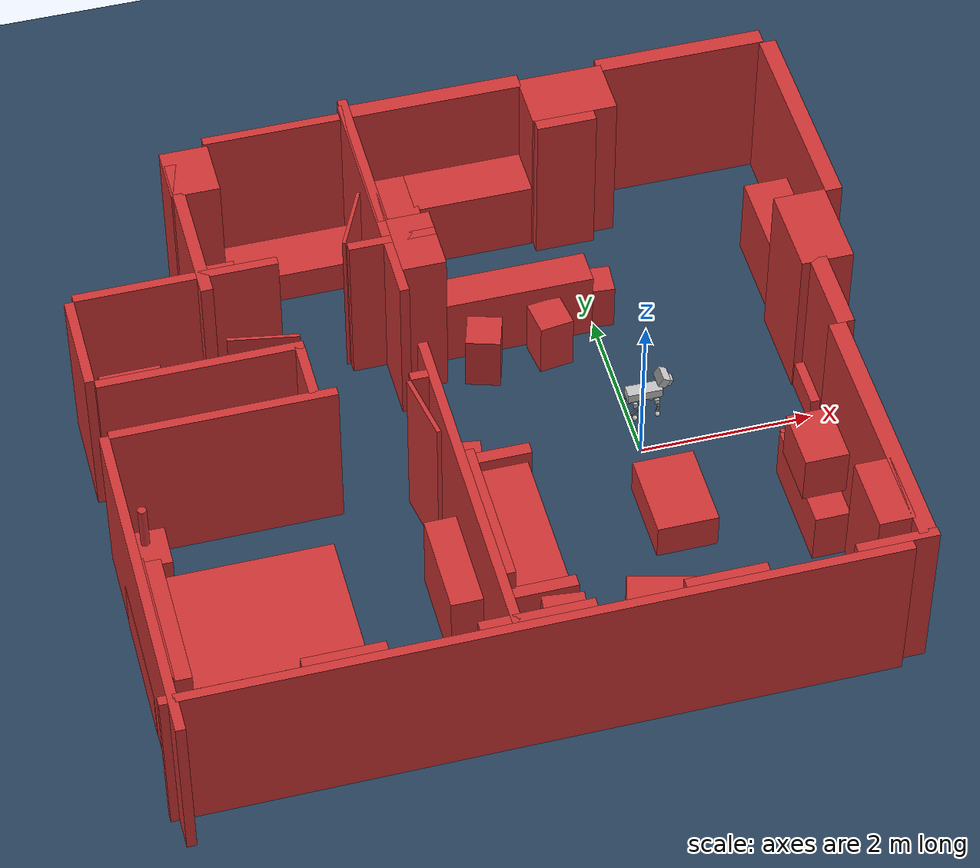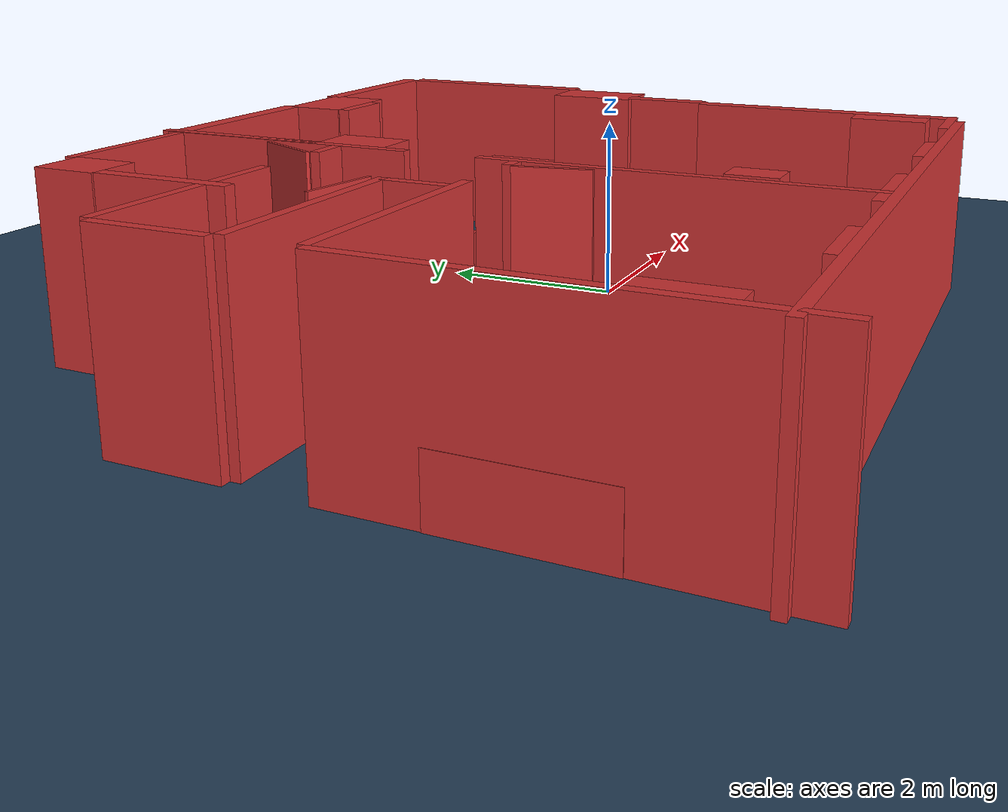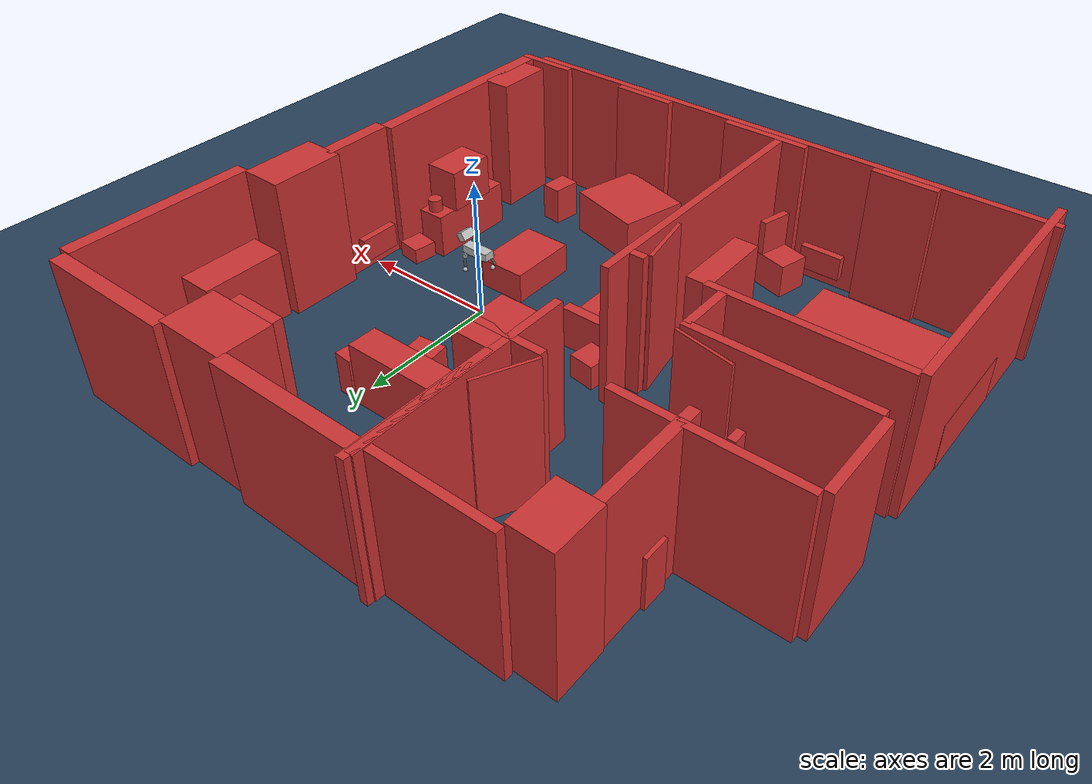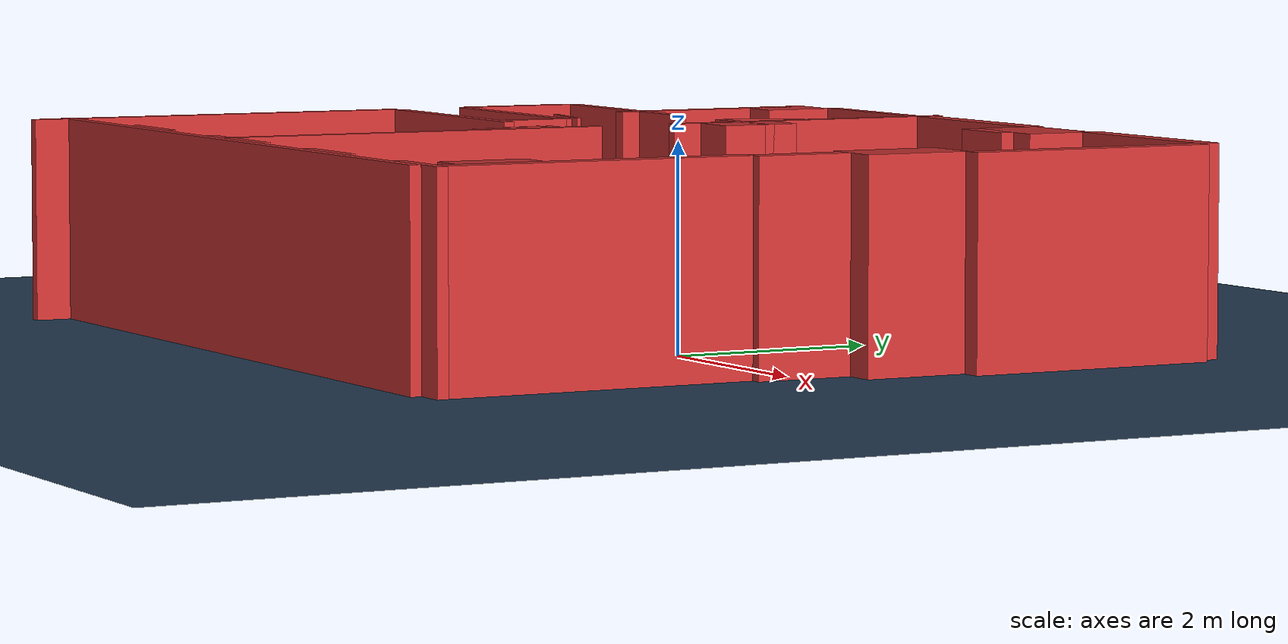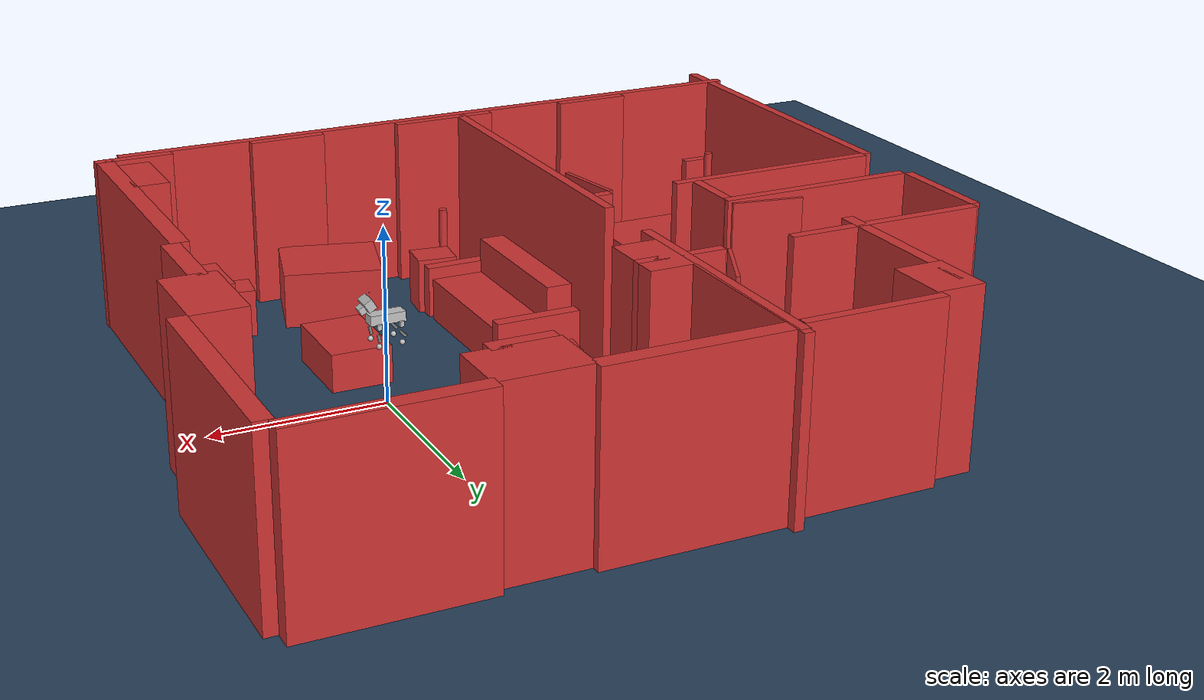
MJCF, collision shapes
<mujoco model="XXG scene">
  <include file="xxg.xml" />

  <statistic center="0 0 0.1" extent="0.8" />

  <visual>
    <headlight diffuse="0.6 0.6 0.6" ambient="0.3 0.3 0.3" specular="0 0 0" />
    <rgba haze="0.15 0.25 0.35 1" />
    <global azimuth="-130" elevation="-20" />
    <map znear="0.01" zfar="100"/>
  </visual>

  <asset>
    <texture type="skybox" builtin="gradient" rgb1="0.3 0.5 0.7" rgb2="0 0 0" width="512" height="3072" />
    <texture type="2d" name="groundplane" builtin="checker" mark="edge" rgb1="0.2 0.3 0.4" rgb2="0.1 0.2 0.3" markrgb="0.8 0.8 0.8" width="300" height="300" />
    <material name="groundplane" texture="groundplane" texuniform="true" texrepeat="5 5" reflectance="0.2" />
  <hfield name="perlin_hfield" size="1.0 0.75 0.2 0.2" file="../height_field.png" /><hfield name="image_hfield" size="1.0 1.0 0.02 0.1" file="../unitree_hfield.png" /></asset>

  <worldbody>
    <light pos="0 0 1.5" dir="0 0 -1" directional="true" />
    <geom name="floor" pos="0 0.0 0.01" size="0 0 0.05" type="plane" material="groundplane" />
    <geom name="phs_Cube" type="box" size="1.0 0.1 1.0" pos="1.6 4.14 1.0" quat="1.0 0.0 0.0 0.0" rgba="0.8 0.2 0.2 1" solref="0.02 1" solimp="0.9 0.95 0.001"/>
    <geom name="phs_Cube2" type="box" size="0.5 0.35 1.0" pos="0.15 3.79 1.0" quat="1.0 0.0 0.0 0.0" rgba="0.8 0.2 0.2 1" solref="0.02 1" solimp="0.9 0.95 0.001"/>
    <geom name="phs_Cube3" type="box" size="0.98625 0.21 0.5" pos="-1.03 2.1 0.39" quat="1.0 0.0 0.0 0.0" rgba="0.8 0.2 0.2 1" solref="0.02 1" solimp="0.9 0.95 0.001"/>
    <geom name="phs_Cube4" type="box" size="0.5 0.055 1.0" pos="-2.35 2.05 1.0" quat="1.0 0.0 0.0 0.0" rgba="0.8 0.2 0.2 1" solref="0.02 1" solimp="0.9 0.95 0.001"/>
    <geom name="phs_Cube5" type="box" size="1.15 0.055 1.0" pos="-4.8 2.05 1.0" quat="1.0 0.0 0.0 0.0" rgba="0.8 0.2 0.2 1" solref="0.02 1" solimp="0.9 0.95 0.001"/>
    <geom name="phs_Cube6" type="box" size="1.25 0.055 1.0" pos="-4.7 0.0 1.0" quat="1.0 0.0 0.0 0.0" rgba="0.8 0.2 0.2 1" solref="0.02 1" solimp="0.9 0.95 0.001"/>
    <geom name="phs_Cube7" type="box" size="4.0 0.055 1.0" pos="-2.15 -3.6 1.0" quat="1.0 0.0 0.0 0.0" rgba="0.8 0.2 0.2 1" solref="0.02 1" solimp="0.9 0.95 0.001"/>
    <geom name="phs_Cube8" type="box" size="0.2 0.055 0.5" pos="-5.8 -3.49 0.5" quat="1.0 0.0 0.0 0.0" rgba="0.8 0.2 0.2 1" solref="0.02 1" solimp="0.9 0.95 0.001"/>
    <geom name="phs_Cube9" type="box" size="0.45 0.055 1.0" pos="-4.2 -3.49 1.0" quat="1.0 0.0 0.0 0.0" rgba="0.8 0.2 0.2 1" solref="0.02 1" solimp="0.9 0.95 0.001"/>
    <geom name="phs_Cube10" type="box" size="0.625 0.055 1.0" pos="-2.17 -3.49 1.0" quat="1.0 0.0 0.0 0.0" rgba="0.8 0.2 0.2 1" solref="0.02 1" solimp="0.9 0.95 0.001"/>
    <geom name="phs_Cube11" type="box" size="0.45 0.055 1.0" pos="-0.15 -3.49 1.0" quat="1.0 0.0 0.0 0.0" rgba="0.8 0.2 0.2 1" solref="0.02 1" solimp="0.9 0.95 0.001"/>
    <geom name="phs_Cube12" type="box" size="0.45 0.055 1.0" pos="1.7 -3.49 1.0" quat="1.0 0.0 0.0 0.0" rgba="0.8 0.2 0.2 1" solref="0.02 1" solimp="0.9 0.95 0.001"/>
    <geom name="phs_Cube13" type="box" size="1.15 0.055 1.0" pos="-4.8 0.75 1.0" quat="1.0 0.0 0.0 0.0" rgba="0.8 0.2 0.2 1" solref="0.02 1" solimp="0.9 0.95 0.001"/>
    <geom name="phs_Cube14" type="box" size="0.8 0.055 1.0" pos="-3.27 4.08 1.0" quat="1.0 0.0 0.0 0.0" rgba="0.8 0.2 0.2 1" solref="0.02 1" solimp="0.9 0.95 0.001"/>
    <geom name="phs_Cube15" type="box" size="0.8 0.3 0.25" pos="-3.26 3.59 0.16" quat="1.0 0.0 0.0 0.0" rgba="0.8 0.2 0.2 1" solref="0.02 1" solimp="0.9 0.95 0.001"/>
    <geom name="phs_Cube16" type="box" size="0.28 0.35 1.0" pos="-4.31 3.65 1.0" quat="1.0 0.0 0.0 0.0" rgba="0.8 0.2 0.2 1" solref="0.02 1" solimp="0.9 0.95 0.001"/>
    <geom name="phs_Cube17" type="box" size="0.25 0.4 1.0" pos="-2.1 1.95 1.0" quat="1.0 0.0 0.0 0.0" rgba="0.8 0.2 0.2 1" solref="0.02 1" solimp="0.9 0.95 0.001"/>
    <geom name="phs_Cube18" type="box" size="0.185 0.185 0.175" pos="-2.0 0.15 0.18" quat="0.997548 0.0 0.0 -0.069981" rgba="0.8 0.2 0.2 1" solref="0.02 1" solimp="0.9 0.95 0.001"/>
    <geom name="phs_Cube19" type="box" size="0.35 0.1 1.0" pos="0.02 3.4 1.0" quat="1.0 0.0 0.0 0.0" rgba="0.8 0.2 0.2 1" solref="0.02 1" solimp="0.9 0.95 0.001"/>
    <geom name="phs_Cube20" type="box" size="0.5 0.9 0.25" pos="-1.89 -1.15 0.25" quat="1.0 0.0 0.0 0.0" rgba="0.8 0.2 0.2 1" solref="0.02 1" solimp="0.9 0.95 0.001"/>
    <geom name="phs_Cube21" type="box" size="0.5 0.075 0.3" pos="-1.84 -0.17 0.34" quat="1.0 0.0 0.0 0.0" rgba="0.8 0.2 0.2 1" solref="0.02 1" solimp="0.9 0.95 0.001"/>
    <geom name="phs_Cube22" type="box" size="0.5 0.075 0.3" pos="-1.84 -2.11 0.34" quat="1.0 0.0 0.0 0.0" rgba="0.8 0.2 0.2 1" solref="0.02 1" solimp="0.9 0.95 0.001"/>
    <geom name="phs_Cube23" type="box" size="0.15 0.9 0.5" pos="-2.16 -1.15 0.41" quat="1.0 0.0 0.0 0.0" rgba="0.8 0.2 0.2 1" solref="0.02 1" solimp="0.9 0.95 0.001"/>
    <geom name="phs_Cube24" type="box" size="0.135 0.185 0.3" pos="0.11 2.12 0.31" quat="0.044248 0.0 0.0 0.999021" rgba="0.8 0.2 0.2 1" solref="0.02 1" solimp="0.9 0.95 0.001"/>
    <geom name="phs_Cube25" type="box" size="0.1 1.25 1.0" pos="2.64 2.78 1.0" quat="1.0 0.0 0.0 0.0" rgba="0.8 0.2 0.2 1" solref="0.02 1" solimp="0.9 0.95 0.001"/>
    <geom name="phs_Cube26" type="box" size="0.3 0.525 1.0" pos="2.24 1.04 1.0" quat="1.0 0.0 0.0 0.0" rgba="0.8 0.2 0.2 1" solref="0.02 1" solimp="0.9 0.95 0.001"/>
    <geom name="phs_Cube27" type="box" size="0.1 1.525 1.0" pos="2.04 -1.95 1.0" quat="1.0 0.0 0.0 0.0" rgba="0.8 0.2 0.2 1" solref="0.02 1" solimp="0.9 0.95 0.001"/>
    <geom name="phs_Cube28" type="box" size="0.1 0.5 1.0" pos="2.14 0.07 1.0" quat="1.0 0.0 0.0 0.0" rgba="0.8 0.2 0.2 1" solref="0.02 1" solimp="0.9 0.95 0.001"/>
    <geom name="phs_Cube29" type="box" size="0.35 0.85 0.5" pos="-2.05 3.21 0.41" quat="1.0 0.0 0.0 0.0" rgba="0.8 0.2 0.2 1" solref="0.02 1" solimp="0.9 0.95 0.001"/>
    <geom name="phs_Cube30" type="box" size="0.055 1.5 1.0" pos="-2.4 2.75 1.0" quat="1.0 0.0 0.0 0.0" rgba="0.8 0.2 0.2 1" solref="0.02 1" solimp="0.9 0.95 0.001"/>
    <geom name="phs_Cube31" type="box" size="0.07 1.0 1.0" pos="-4.5 2.8 1.0" quat="1.0 0.0 0.0 0.0" rgba="0.8 0.2 0.2 1" solref="0.02 1" solimp="0.9 0.95 0.001"/>
    <geom name="phs_Cube32" type="box" size="0.055 0.15 0.5" pos="-4.5 0.86 0.5" quat="1.0 0.0 0.0 0.0" rgba="0.8 0.2 0.2 1" solref="0.02 1" solimp="0.9 0.95 0.001"/>
    <geom name="phs_Cube33" type="box" size="0.055 0.6 1.0" pos="-6.0 1.4 1.0" quat="1.0 0.0 0.0 0.0" rgba="0.8 0.2 0.2 1" solref="0.02 1" solimp="0.9 0.95 0.001"/>
    <geom name="phs_Cube34" type="box" size="0.35 0.35 0.5" pos="-5.45 1.4 0.5" quat="1.0 0.0 0.0 0.0" rgba="0.8 0.2 0.2 1" solref="0.02 1" solimp="0.9 0.95 0.001"/>
    <geom name="phs_Cube35" type="box" size="0.055 0.35 1.0" pos="-3.7 0.39 1.0" quat="1.0 0.0 0.0 0.0" rgba="0.8 0.2 0.2 1" solref="0.02 1" solimp="0.9 0.95 0.001"/>
    <geom name="phs_Cube36" type="box" size="0.055 2.0 1.0" pos="-6.0 -2.01 1.0" quat="1.0 0.0 0.0 0.0" rgba="0.8 0.2 0.2 1" solref="0.02 1" solimp="0.9 0.95 0.001"/>
    <geom name="phs_Cube37" type="box" size="0.055 2.0 1.0" pos="-2.4 -1.55 1.0" quat="1.0 0.0 0.0 0.0" rgba="0.8 0.2 0.2 1" solref="0.02 1" solimp="0.9 0.95 0.001"/>
    <geom name="phs_Cube38" type="box" size="0.1 0.055 1.0" pos="-2.55 0.0 1.0" quat="1.0 0.0 0.0 0.0" rgba="0.8 0.2 0.2 1" solref="0.02 1" solimp="0.9 0.95 0.001"/>
    <geom name="phs_Cube40" type="box" size="0.35 0.575 0.5" pos="2.37 2.2 0.5" quat="1.0 0.0 0.0 0.0" rgba="0.8 0.2 0.2 1" solref="0.02 1" solimp="0.9 0.95 0.001"/>
    <geom name="phs_Cube41" type="box" size="0.25 0.25 0.5" pos="-4.2 3.0 0.35" quat="1.0 0.0 0.0 0.0" rgba="0.8 0.2 0.2 1" solref="0.02 1" solimp="0.9 0.95 0.001"/>
    <geom name="phs_Cube42" type="box" size="0.25 0.15 0.2" pos="-3.9 2.5 0.2" quat="1.0 0.0 0.0 0.0" rgba="0.8 0.2 0.2 1" solref="0.02 1" solimp="0.9 0.95 0.001"/>
    <geom name="phs_Cube43" type="box" size="0.25 0.175 0.5" pos="-4.37 2.5 0.25" quat="1.0 0.0 0.0 0.0" rgba="0.8 0.2 0.2 1" solref="0.02 1" solimp="0.9 0.95 0.001"/>
    <geom name="phs_Cube44" type="box" size="0.35 0.5 0.25" pos="0.09 -1.01 0.19" quat="1.0 0.0 0.0 0.0" rgba="0.8 0.2 0.2 1" solref="0.02 1" solimp="0.9 0.95 0.001"/>
    <geom name="phs_Cube45" type="box" size="0.235 0.2 0.325" pos="-1.5734 -2.467124 0.33" quat="0.057212 0.0 0.0 0.998362" rgba="0.8 0.2 0.2 1" solref="0.02 1" solimp="0.9 0.95 0.001"/>
    <geom name="Cylinder"  type="cylinder" size="0.05 0.5" pos="-1.93607 -2.99759 0.5" quat="1.0 0.0 0.0 0.0" rgba="0.8 0.2 0.2 1" solref="0.02 1" solimp="0.9 0.95 0.001"/>
    <geom name="Cylinder2"  type="cylinder" size="0.175 0.05" pos="-1.93607 -2.99759 -0.01" quat="1.0 0.0 0.0 0.0" rgba="0.8 0.2 0.2 1" solref="0.02 1" solimp="0.9 0.95 0.001"/>
    <geom name="phs_Cube46" type="box" size="0.575 0.5 0.325" pos="-0.4 -2.838624 0.33" quat="0.130526 0.0 0.0 0.991445" rgba="0.8 0.2 0.2 1" solref="0.02 1" solimp="0.9 0.95 0.001"/>
    <geom name="phs_Cube47" type="box" size="0.2 0.65 0.5" pos="1.58 -1.33 0.15" quat="1.0 0.0 0.0 0.0" rgba="0.8 0.2 0.2 1" solref="0.02 1" solimp="0.9 0.95 0.001"/>
    <geom name="phs_Cube48" type="box" size="0.25 0.35 0.3" pos="1.58 -1.31 0.96" quat="1.0 0.0 0.0 0.0" rgba="0.8 0.2 0.2 1" solref="0.02 1" solimp="0.9 0.95 0.001"/>
    <geom name="Cylinder3"  type="cylinder" size="0.1 0.1" pos="1.614829 -0.827085 0.73" quat="1.0 0.0 0.0 0.0" rgba="0.8 0.2 0.2 1" solref="0.02 1" solimp="0.9 0.95 0.001"/>
    <geom name="phs_Cube49" type="box" size="0.175 0.175 0.115" pos="1.687024 -0.478927 0.12" quat="0.069981 0.0 0.0 0.997548" rgba="0.8 0.2 0.2 1" solref="0.02 1" solimp="0.9 0.95 0.001"/>
    <geom name="phs_Cube50" type="box" size="0.2 0.425 1.0" pos="1.78 -2.83 1.0" quat="1.0 0.0 0.0 0.0" rgba="0.8 0.2 0.2 1" solref="0.02 1" solimp="0.9 0.95 0.001"/>
    <geom name="phs_Cube51" type="box" size="0.2 0.21 0.35" pos="-0.610998 1.675638 0.34" quat="0.99788 0.0 0.0 0.065088" rgba="0.8 0.2 0.2 1" solref="0.02 1" solimp="0.9 0.95 0.001"/>
    <geom name="phs_Cube52" type="box" size="0.2 0.21 0.35" pos="-1.405686 1.617407 0.34" quat="0.15245 0.0 0.0 0.988311" rgba="0.8 0.2 0.2 1" solref="0.02 1" solimp="0.9 0.95 0.001"/>
    <geom name="phs_Cube53" type="box" size="1.15 0.775 0.35" pos="-4.91 -1.75 0.31" quat="1.0 0.0 0.0 0.0" rgba="0.8 0.2 0.2 1" solref="0.02 1" solimp="0.9 0.95 0.001"/>
    <geom name="phs_Cube54" type="box" size="0.05 0.825 0.5" pos="-5.88 -1.75 0.5" quat="1.0 0.0 0.0 0.0" rgba="0.8 0.2 0.2 1" solref="0.02 1" solimp="0.9 0.95 0.001"/>
    <geom name="phs_Cube55" type="box" size="0.2 0.25 0.35" pos="-5.71 -2.957979 0.3" quat="1.0 0.0 0.0 0.0" rgba="0.8 0.2 0.2 1" solref="0.02 1" solimp="0.9 0.95 0.001"/>
    <geom name="Cylinder4"  type="cylinder" size="0.05 0.275" pos="-5.691807 -3.040375 0.94" quat="1.0 0.0 0.0 0.0" rgba="0.8 0.2 0.2 1" solref="0.02 1" solimp="0.9 0.95 0.001"/>
    <geom name="phs_Cube56" type="box" size="0.25 0.2 0.35" pos="-5.69 -0.522612 0.3" quat="0.710134 0.0 0.0 0.704066" rgba="0.8 0.2 0.2 1" solref="0.02 1" solimp="0.9 0.95 0.001"/>
    <geom name="Cylinder5"  type="cylinder" size="0.05 0.275" pos="-5.729532 -0.4478 0.94" quat="1.0 0.0 0.0 0.0" rgba="0.8 0.2 0.2 1" solref="0.02 1" solimp="0.9 0.95 0.001"/>
    <geom name="phs_Cube57" type="box" size="0.1 0.825 0.5" pos="-5.74 -1.75 0.43" quat="1.0 0.0 0.0 0.0" rgba="0.8 0.2 0.2 1" solref="0.02 1" solimp="0.9 0.95 0.001"/>
    <geom name="phs_Cube58" type="box" size="0.225 0.25 0.25" pos="-2.80415 -3.122042 0.24" quat="0.608794 0.0 0.0 -0.793329" rgba="0.8 0.2 0.2 1" solref="0.02 1" solimp="0.9 0.95 0.001"/>
    <geom name="phs_Cube59" type="box" size="0.225 0.05 0.25" pos="-2.61 -3.18 0.74" quat="0.608794 0.0 0.0 -0.793329" rgba="0.8 0.2 0.2 1" solref="0.02 1" solimp="0.9 0.95 0.001"/>
    <geom name="phs_Cube60" type="box" size="0.225 0.59 0.5" pos="-2.59 -1.8 0.5" quat="1.0 0.0 0.0 0.0" rgba="0.8 0.2 0.2 1" solref="0.02 1" solimp="0.9 0.95 0.001"/>
    <geom name="phs_Cube61" type="box" size="0.3 0.055 0.175" pos="-3.26 -3.45 0.39" quat="1.0 0.0 0.0 0.0" rgba="0.8 0.2 0.2 1" solref="0.02 1" solimp="0.9 0.95 0.001"/>
    <geom name="phs_Cube62" type="box" size="0.3 0.055 0.175" pos="1.94 0.04 0.39" quat="0.707107 0.0 0.0 0.707107" rgba="0.8 0.2 0.2 1" solref="0.02 1" solimp="0.9 0.95 0.001"/>
    <geom name="phs_Cube63" type="box" size="0.025 0.4 1.0" pos="-2.61 -0.45 1.0" quat="0.996195 0.0 0.0 0.087156" rgba="0.8 0.2 0.2 1" solref="0.02 1" solimp="0.9 0.95 0.001"/>
    <geom name="phs_Cube64" type="box" size="0.15 0.2 0.325" pos="0.78 -2.66 0.23" quat="0.057212 0.0 0.0 0.998362" rgba="0.8 0.2 0.2 1" solref="0.02 1" solimp="0.9 0.95 0.001"/>
    <geom name="phs_Cube65" type="box" size="0.02 0.4 1.0" pos="-2.71 2.48 1.0" quat="0.976296 0.0 0.0 -0.21644" rgba="0.8 0.2 0.2 1" solref="0.02 1" solimp="0.9 0.95 0.001"/>
    <geom name="phs_Cube66" type="box" size="0.02 0.4 1.0" pos="-4.05 0.96 1.0" quat="0.642788 0.0 0.0 -0.766044" rgba="0.8 0.2 0.2 1" solref="0.02 1" solimp="0.9 0.95 0.001"/>
    <geom name="phs_Cube39" type="box" size="0.7 0.35 0.5" pos="-1.05 3.79 0.41" quat="1.0 0.0 0.0 0.0" rgba="0.8 0.2 0.2 1" solref="0.02 1" solimp="0.9 0.95 0.001"/>
    <geom name="phs_Cube67" type="box" size="1.0 0.1 1.0" pos="-1.33 4.13 1.0" quat="1.0 0.0 0.0 0.0" rgba="0.8 0.2 0.2 1" solref="0.02 1" solimp="0.9 0.95 0.001"/>
    <geom name="phs_Cube68" type="box" size="0.055 1.0 1.0" pos="-2.38 3.34 1.0" quat="1.0 0.0 0.0 0.0" rgba="0.8 0.2 0.2 1" solref="0.02 1" solimp="0.9 0.95 0.001"/>
    </worldbody>
</mujoco>

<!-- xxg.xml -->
<mujoco model="DOG">
  <compiler angle="radian" meshdir="assets/"/>

  <asset>
    <mesh name="BASE_LINK" file="BASE_LINK.STL"/>
    <mesh name="FBL_ABAD_LINK" file="FBL_ABAD_LINK.STL"/>
    <mesh name="FBL_HIP_LINK" file="FBL_HIP_LINK.STL"/>
    <mesh name="FBL_KNEE_LINK" file="FBL_KNEE_LINK.STL"/>
    <mesh name="FBL_FOOT_LINK" file="FBL_FOOT_LINK.STL"/>
    <mesh name="FAR_ABAD_LINK" file="FAR_ABAD_LINK.STL"/>
    <mesh name="FAR_HIP_LINK" file="FAR_HIP_LINK.STL"/>
    <mesh name="FAR_KNEE_LINK" file="FAR_KNEE_LINK.STL"/>
    <mesh name="FAR_FOOT_LINK" file="FAR_FOOT_LINK.STL"/>
    <mesh name="RAR_ABAD_LINK" file="RAR_ABAD_LINK.STL"/>
    <mesh name="RAR_HIP_LINK" file="RAR_HIP_LINK.STL"/>
    <mesh name="RAR_KNEE_LINK" file="RAR_KNEE_LINK.STL"/>
    <mesh name="RAR_FOOT_LINK" file="RAR_FOOT_LINK.STL"/>
    <mesh name="RBL_ABAD_LINK" file="RBL_ABAD_LINK.STL"/>
    <mesh name="RBL_HIP_LINK" file="RBL_HIP_LINK.STL"/>
    <mesh name="RBL_KNEE_LINK" file="RBL_KNEE_LINK.STL"/>
    <mesh name="RBL_FOOT_LINK" file="RBL_FOOT_LINK.STL"/>
    <mesh name="HEAD1_LINK" file="HEAD1_LINK.STL"/>
    <mesh name="HEAD2_LINK" file="HEAD2_LINK.STL"/>
  </asset>

  <worldbody>
    <body name="BASE_LINK" pos="0 0 1.0">
      <inertial pos="1.8341473e-02 -1.9475667e-04 1.6646741e-02" quat="-0 0 0 1" mass="5.6608325" diaginertia="0.039340224 8.8059075e-02 7.6312096e-02"/>
      <freejoint />
      <site name="imu" pos="0.0 0 0.0" />
    <!-- add livox_imu -->
    <site name="livox_imu" pos="0.18 0.0 0.3" quat="1.0 0.0 0.0 0.0"/>
    <!-- add camera imu -->
    <site name="camera_imu" pos="0.18 0.0 0.3" quat="1.0 0.0 0.0 0.0"/>

    <geom type="mesh" contype="0" conaffinity="0" group="1" density="0" rgba="0.75294 0.75294 0.75294 1.0" mesh="BASE_LINK"/>
    <geom size="0.2 0.075 0.055" type="box" rgba="0.75294 0.75294 0.75294 0.0"/>
    <geom pos="0.1775 0 0.1164" quat="0.965249 0 0.26133 0" type="mesh" contype="0" conaffinity="0" group="1" density="0" rgba="0.75294 0.75294 0.75294 1.0" mesh="HEAD1_LINK"/>
    <geom pos="0.1775 0 0.1164" quat="0.965249 0 0.26133 0" type="mesh" contype="0" conaffinity="0" group="1" density="0" rgba="0.75294 0.75294 0.75294 1.0" mesh="HEAD2_LINK"/>
    <geom size="0.05 0.1 0.06" pos="0.204181 0 0.181884" quat="0.965249 0 0.26133 0" type="box" rgba="0.75294 0.75294 0.75294 0.0"/>
    <geom size="0.035 0.05 0.04" pos="0.27432 0 0.123528" quat="0.965249 0 0.26133 0" type="box" rgba="0.75294 0.75294 0.75294 0.0"/>
    <body name="FBL_ABAD_LINK" pos="0.1305 0.0377 0">
      <inertial pos="-0.0258732 0.00474653 0" quat="0.446156 0.446156 0.548585 0.548585" mass="0.29007" diaginertia="0.000234429 0.000228281 4.61129e-05"/>
      <joint name="FBL_ABAD_JOINT" pos="0 0 0" axis="1 0 0" range="-0.4887 0.4887" actuatorfrcrange="-20 20"/>
      <geom type="mesh" contype="0" conaffinity="0" group="1" density="0" rgba="0.75294 0.75294 0.75294 1.0" mesh="FBL_ABAD_LINK"/>
      <body name="FBL_HIP_LINK">
        <inertial pos="0 0.0475203 -0.0615104" quat="0.992663 0.120643 7.95638e-06 -0.00808508" mass="0.698577" diaginertia="0.00315469 0.00310141 0.000383698"/>
        <joint name="FBL_HIP_JOINT" pos="0 0 0" axis="0 1 0" range="-2.967 2.967" actuatorfrcrange="-20 20"/>
        <geom type="mesh" contype="0" conaffinity="0" group="1" density="0" rgba="0.75294 0.75294 0.75294 1.0" mesh="FBL_HIP_LINK"/>
        <geom size="0.025 0.015 0.03" pos="-0.01 0.085 -0.06" type="box" rgba="0.75294 0.75294 0.75294 1.0"/>
        <body name="FBL_KNEE_LINK" pos="0 0.08786 -0.1307">
          <inertial pos="0.00368489 0.0063771 -0.0635258" quat="0.608469 0.0177668 -0.0332576 0.792681" mass="0.288584" diaginertia="0.00161384 0.00159203 5.37708e-05"/>
          <joint name="FBL_KNEE_JOINT" pos="0 0 0" axis="0 1 0" range="-2.723 2.702" actuatorfrcrange="-20 20"/>
          <geom type="mesh" contype="0" conaffinity="0" group="1" density="0" rgba="0.49804 0.49804 0.49804 1.0" mesh="FBL_KNEE_LINK"/>
          <geom size="0.015 0.01 0.045" pos="0 0 -0.05" quat="0.994493 0 0.104807 0" type="box" rgba="0.49804 0.49804 0.49804 1.0"/>
          <geom pos="0 0 -0.1425" type="mesh" contype="0" conaffinity="0" group="1" density="0" rgba="0.75294 0.75294 0.75294 1.0" mesh="FBL_FOOT_LINK"/>
          <geom size="0.03" pos="0 0 -0.1425" quat="0.707388 0.706825 0 0" rgba="0.75294 0.75294 0.75294 1.0"/>
        </body>
      </body>
    </body>
    <body name="FAR_ABAD_LINK" pos="0.1305 -0.0377 0">
      <inertial pos="-0.0258732 -0.00474653 0" quat="0.548585 0.548585 0.446156 0.446156" mass="0.29007" diaginertia="0.000234429 0.000228281 4.61129e-05"/>
      <joint name="FAR_ABAD_JOINT" pos="0 0 0" axis="1 0 0" range="-0.4887 0.4887" actuatorfrcrange="-20 20"/>
      <geom type="mesh" contype="0" conaffinity="0" group="1" density="0" rgba="0.75294 0.75294 0.75294 1.0" mesh="FAR_ABAD_LINK"/>
      <body name="FAR_HIP_LINK">
        <inertial pos="0 -0.0475203 -0.0615104" quat="0.992663 -0.120643 7.95638e-06 0.00808508" mass="0.698577" diaginertia="0.00315469 0.00310141 0.000383698"/>
        <joint name="FAR_HIP_JOINT" pos="0 0 0" axis="0 1 0" range="-2.967 2.967" actuatorfrcrange="-20 20"/>
        <geom type="mesh" contype="0" conaffinity="0" group="1" density="0" rgba="0.75294 0.75294 0.75294 1.0" mesh="FAR_HIP_LINK"/>
        <geom size="0.025 0.015 0.03" pos="-0.01 -0.085 -0.06" type="box" rgba="0.75294 0.75294 0.75294 1.0"/>
        <body name="FAR_KNEE_LINK" pos="0 -0.08786 -0.1307">
          <inertial pos="0.00368489 -0.0063771 -0.0635258" quat="0.792681 -0.0332576 0.0177668 0.608469" mass="0.288584" diaginertia="0.00161384 0.00159203 5.37708e-05"/>
          <joint name="FAR_KNEE_JOINT" pos="0 0 0" axis="0 1 0" range="-2.723 2.702" actuatorfrcrange="-20 20"/>
          <geom type="mesh" contype="0" conaffinity="0" group="1" density="0" rgba="0.49804 0.49804 0.49804 1.0" mesh="FAR_KNEE_LINK"/>
          <geom size="0.015 0.01 0.045" pos="0 0 -0.05" quat="0.994493 0 0.104807 0" type="box" rgba="0.49804 0.49804 0.49804 1.0"/>
          <geom pos="0 0 -0.1425" type="mesh" contype="0" conaffinity="0" group="1" density="0" rgba="0.75294 0.75294 0.75294 1.0" mesh="FAR_FOOT_LINK"/>
          <geom size="0.03" pos="0 0 -0.1425" quat="0.707388 0.706825 0 0" rgba="0.75294 0.75294 0.75294 1.0"/>
        </body>
      </body>
    </body>
    <body name="RAR_ABAD_LINK" pos="-0.1305 -0.0377 0">
      <inertial pos="0.0258732 -0.00474653 0" quat="0.446156 0.446156 0.548585 0.548585" mass="0.29007" diaginertia="0.000234429 0.000228281 4.61129e-05"/>
      <joint name="RAR_ABAD_JOINT" pos="0 0 0" axis="1 0 0" range="-0.4887 0.4887" actuatorfrcrange="-20 20"/>
      <geom type="mesh" contype="0" conaffinity="0" group="1" density="0" rgba="0.75294 0.75294 0.75294 1.0" mesh="RAR_ABAD_LINK"/>
      <body name="RAR_HIP_LINK">
        <inertial pos="0 -0.0475203 -0.0615104" quat="0.992663 -0.120643 7.95638e-06 0.00808508" mass="0.698577" diaginertia="0.00315469 0.00310141 0.000383698"/>
        <joint name="RAR_HIP_JOINT" pos="0 0 0" axis="0 1 0" range="-2.967 2.967" actuatorfrcrange="-20 20"/>
        <geom type="mesh" contype="0" conaffinity="0" group="1" density="0" rgba="0.75294 0.75294 0.75294 1.0" mesh="RAR_HIP_LINK"/>
        <geom size="0.025 0.015 0.03" pos="0 -0.085 -0.06" type="box" rgba="0.75294 0.75294 0.75294 1.0"/>
        <body name="RAR_KNEE_LINK" pos="0 -0.08786 -0.1307">
          <inertial pos="0.00368489 -0.0063771 -0.0634925" quat="0.792566 -0.0333078 0.0177921 0.608615" mass="0.288584" diaginertia="0.0016124 0.00159058 5.37526e-05"/>
          <joint name="RAR_KNEE_JOINT" pos="0 0 0" axis="0 1 0" range="-2.723 2.702" actuatorfrcrange="-20 20"/>
          <geom type="mesh" contype="0" conaffinity="0" group="1" density="0" rgba="0.49804 0.49804 0.49804 1.0" mesh="RAR_KNEE_LINK"/>
          <geom size="0.015 0.01 0.045" pos="-0.01 0 -0.04" quat="0.930508 0 0.366273 0" type="box" rgba="0.49804 0.49804 0.49804 1.0"/>
          <geom pos="0 0 -0.1357" quat="1 0 0 0" type="mesh" contype="0" conaffinity="0" group="1" density="0" rgba="0.75294 0.75294 0.75294 1.0" mesh="RAR_FOOT_LINK"/>
          <geom size="0.03" pos="0 0 -0.1357" quat="0.707388 0.706825 0 0" rgba="0.75294 0.75294 0.75294 1.0"/>
        </body>
      </body>
    </body>
    <body name="RBL_ABAD_LINK" pos="-0.1305 0.0377 0">
      <inertial pos="0.0258732 0.00474653 0" quat="0.548585 0.548585 0.446156 0.446156" mass="0.29007" diaginertia="0.000234429 0.000228281 4.61129e-05"/>
      <joint name="RBL_ABAD_JOINT" pos="0 0 0" axis="1 0 0" range="-0.4887 0.4887" actuatorfrcrange="-20 20"/>
      <geom type="mesh" contype="0" conaffinity="0" group="1" density="0" rgba="0.75294 0.75294 0.75294 1.0" mesh="RBL_ABAD_LINK"/>
      <body name="RBL_HIP_LINK">
        <inertial pos="0 0.0475203 -0.0615104" quat="0.992663 0.120643 7.95638e-06 -0.00808508" mass="0.698577" diaginertia="0.00315469 0.00310141 0.000383698"/>
        <joint name="RBL_HIP_JOINT" pos="0 0 0" axis="0 1 0" range="-2.967 2.967" actuatorfrcrange="-20 20"/>
        <geom type="mesh" contype="0" conaffinity="0" group="1" density="0" rgba="0.75294 0.75294 0.75294 1.0" mesh="RBL_HIP_LINK"/>
        <geom size="0.025 0.015 0.03" pos="0 0.085 -0.06" type="box" rgba="0.75294 0.75294 0.75294 1.0"/>
        <body name="RBL_KNEE_LINK" pos="0 0.08786 -0.1307">
          <inertial pos="0.00368489 0.0063771 -0.0634925" quat="0.608615 0.0177921 -0.0333078 0.792566" mass="0.288584" diaginertia="0.0016124 0.00159058 5.37526e-05"/>
          <joint name="RBL_KNEE_JOINT" pos="0 0 0" axis="0 1 0" range="-2.723 2.702" actuatorfrcrange="-20 20"/>
          <geom type="mesh" contype="0" conaffinity="0" group="1" density="0" rgba="0.49804 0.49804 0.49804 1.0" mesh="RBL_KNEE_LINK"/>
          <geom size="0.015 0.01 0.045" pos="-0.01 0 -0.04" quat="0.930508 0 0.366273 0" type="box" rgba="0.49804 0.49804 0.49804 1.0"/>
          <geom pos="0 0 -0.1357" quat="1 0 0 0" type="mesh" contype="0" conaffinity="0" group="1" density="0" rgba="0.75294 0.75294 0.75294 1.0" mesh="RBL_FOOT_LINK"/>
          <geom size="0.03" pos="0 0 -0.1357" quat="0.707388 0.706825 0 0" rgba="0.75294 0.75294 0.75294 1.0"/>
        </body>
      </body>
    </body>
  </body>
  </worldbody>
    <actuator>
        <motor name="FR_ABAD_LINK" joint="FAR_ABAD_JOINT" />
        <motor name="FR_HIP_LINK" joint="FAR_HIP_JOINT" />
        <motor name="FR_KNEE_LINK" joint="FAR_KNEE_JOINT" />
        <motor name="FL_ABAD_LINK" joint="FBL_ABAD_JOINT" />
        <motor name="FL_HIP_LINK" joint="FBL_HIP_JOINT" />
        <motor name="FL_KNEE_LINK" joint="FBL_KNEE_JOINT" />
        <motor name="RR_ABAD_LINK" joint="RAR_ABAD_JOINT" />
        <motor name="RR_HIP_LINK" joint="RAR_HIP_JOINT" />
        <motor name="RR_KNEE_LINK" joint="RAR_KNEE_JOINT" />
        <motor name="RL_ABAD_LINK" joint="RBL_ABAD_JOINT" />
        <motor name="RL_HIP_LINK" joint="RBL_HIP_JOINT" />
        <motor name="RL_KNEE_LINK" joint="RBL_KNEE_JOINT" />
    </actuator>

    <sensor>
        <jointpos name="FR_hip_pos" joint="FAR_ABAD_JOINT" />
        <jointpos name="FR_thigh_pos" joint="FAR_HIP_JOINT" />
        <jointpos name="FR_calf_pos" joint="FAR_KNEE_JOINT" />
        <jointpos name="FL_hip_pos" joint="FBL_ABAD_JOINT" />
        <jointpos name="FL_thigh_pos" joint="FBL_HIP_JOINT" />
        <jointpos name="FL_calf_pos" joint="FBL_KNEE_JOINT" />
        <jointpos name="RR_hip_pos" joint="RAR_ABAD_JOINT" />
        <jointpos name="RR_thigh_pos" joint="RAR_HIP_JOINT" />
        <jointpos name="RR_calf_pos" joint="RAR_KNEE_JOINT" />
        <jointpos name="RL_hip_pos" joint="RBL_ABAD_JOINT" />
        <jointpos name="RL_thigh_pos" joint="RBL_HIP_JOINT" />
        <jointpos name="RL_calf_pos" joint="RBL_KNEE_JOINT" />

        <jointvel name="FR_hip_vel" joint="FAR_ABAD_JOINT" />
        <jointvel name="FR_thigh_vel" joint="FAR_HIP_JOINT" />
        <jointvel name="FR_calf_vel" joint="FAR_KNEE_JOINT" />
        <jointvel name="FL_hip_vel" joint="FBL_ABAD_JOINT" />
        <jointvel name="FL_thigh_vel" joint="FBL_HIP_JOINT" />
        <jointvel name="FL_calf_vel" joint="FBL_KNEE_JOINT" />
        <jointvel name="RR_hip_vel" joint="RAR_ABAD_JOINT" />
        <jointvel name="RR_thigh_vel" joint="RAR_HIP_JOINT" />
        <jointvel name="RR_calf_vel" joint="RAR_KNEE_JOINT" />
        <jointvel name="RL_hip_vel" joint="RBL_ABAD_JOINT" />
        <jointvel name="RL_thigh_vel" joint="RBL_HIP_JOINT" />
        <jointvel name="RL_calf_vel" joint="RBL_KNEE_JOINT" />

        <jointactuatorfrc name="FR_hip_torque" joint="FAR_ABAD_JOINT" noise="0.01" />
        <jointactuatorfrc name="FR_thigh_torque" joint="FAR_HIP_JOINT" noise="0.01" />
        <jointactuatorfrc name="FR_calf_torque" joint="FAR_KNEE_JOINT" noise="0.01" />
        <jointactuatorfrc name="FL_hip_torque" joint="FBL_ABAD_JOINT" noise="0.01" />
        <jointactuatorfrc name="FL_thigh_torque" joint="FBL_HIP_JOINT" noise="0.01" />
        <jointactuatorfrc name="FL_calf_torque" joint="FBL_KNEE_JOINT" noise="0.01" />
        <jointactuatorfrc name="RR_hip_torque" joint="RAR_ABAD_JOINT" noise="0.01" />
        <jointactuatorfrc name="RR_thigh_torque" joint="RAR_HIP_JOINT" noise="0.01" />
        <jointactuatorfrc name="RR_calf_torque" joint="RAR_KNEE_JOINT" noise="0.01" />
        <jointactuatorfrc name="RL_hip_torque" joint="RBL_ABAD_JOINT" noise="0.01" />
        <jointactuatorfrc name="RL_thigh_torque" joint="RBL_HIP_JOINT" noise="0.01" />
        <jointactuatorfrc name="RL_calf_torque" joint="RBL_KNEE_JOINT" noise="0.01" />

        <framequat name="imu_quat" objtype="site" objname="imu" />
        <gyro name="imu_gyro" site="imu" />
        <accelerometer name="imu_acc" site="imu" />

        <framepos name="frame_pos" objtype="site" objname="imu" />
        <framelinvel name="frame_vel" objtype="site" objname="imu" />

        <!-- add livox_imu -->
        <framequat name="livox_imu_quat" objtype="site" objname="livox_imu" />
        <gyro name="livox_imu_gyro" site="livox_imu" />
        <accelerometer name="livox_imu_acc" site="livox_imu" />

        <framepos name="livox_imu_frame_pos" objtype="site" objname="livox_imu" />
        <framelinvel name="livox_imu_frame_vel" objtype="site" objname="livox_imu" />

        <!-- add camera imu -->
        <framequat name="camera_imu_quat" objtype="site" objname="camera_imu" />
        <gyro name="camera_imu_gyro" site="camera_imu" />
        <accelerometer name="camera_imu_acc" site="camera_imu" />

        <framepos name="camera_imu_frame_pos" objtype="site" objname="camera_imu" />
        <framelinvel name="camera_imu_frame_vel" objtype="site" objname="camera_imu" />
    </sensor>

</mujoco>
